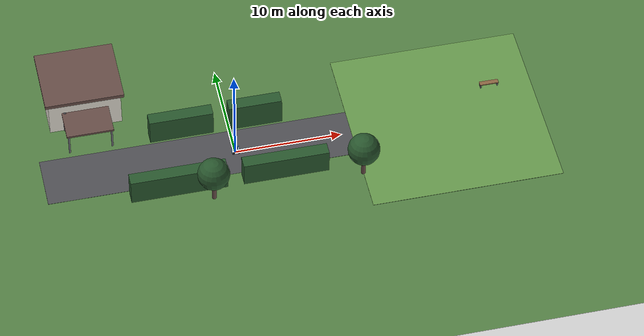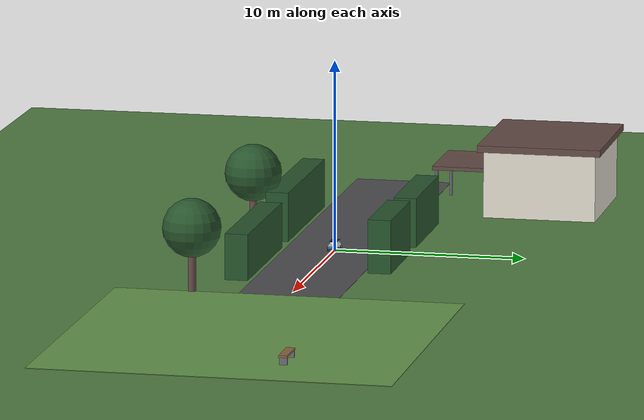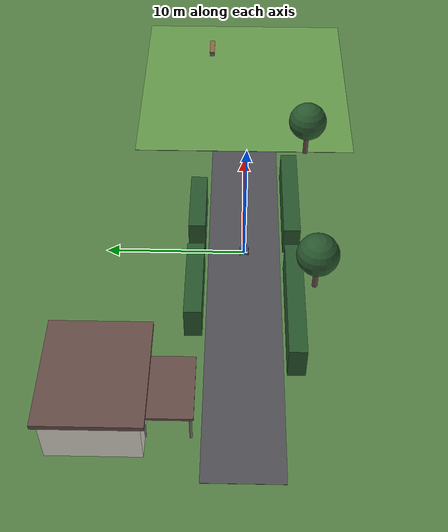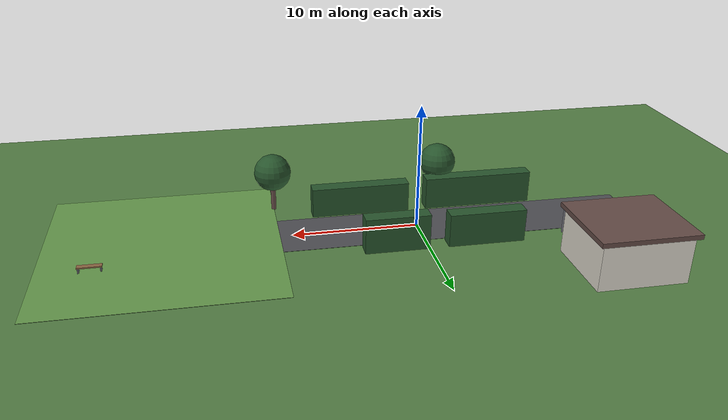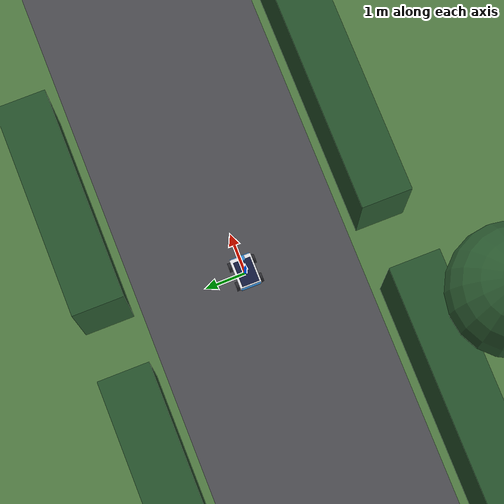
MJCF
<mujoco model="solar">
  <include file="pyunto_s1.xml"/>

  <compiler angle="radian" autolimits="true"/>
  <option timestep="0.004" integrator="implicitfast"/>

  <visual>
    <!-- Deliberately dim ambient. If the headlight fills the scene, shadow and sun look the
         same to the camera and the robot has nothing to search for. -->
    <headlight ambient="0.20 0.20 0.23" diffuse="0.25 0.25 0.25" specular="0.05 0.05 0.05"/>
    <map znear="0.02" zfar="120"/>
    <quality shadowsize="8192"/>
    <!-- Big enough for an offscreen render: the default 640x480 framebuffer refuses any
         larger image, which blocks documentation shots and any test that wants to look. -->
    <global offwidth="1600" offheight="1200"/>
  </visual>

  <asset>
    <texture name="sky" type="skybox" builtin="gradient"
             rgb1="0.38 0.52 0.74" rgb2="0.92 0.83 0.68" width="256" height="256"/>
    <texture name="road_tex" type="2d" builtin="checker" rgb1="0.33 0.33 0.35"
             rgb2="0.29 0.29 0.31" width="256" height="256"/>
    <material name="road" texture="road_tex" texrepeat="10 10" specular="0.06"/>
    <material name="grass" rgba="0.33 0.50 0.27 1" specular="0.04"/>
    <material name="park_grass" rgba="0.40 0.60 0.30 1" specular="0.04"/>
    <material name="wall" rgba="0.90 0.88 0.83 1" specular="0.05"/>
    <material name="roof" rgba="0.40 0.30 0.28 1" specular="0.08"/>
    <material name="hedge" rgba="0.16 0.34 0.18 1" specular="0.02"/>
    <material name="post" rgba="0.42 0.42 0.45 1" specular="0.3"/>
    <material name="bench" rgba="0.55 0.40 0.26 1" specular="0.1"/>

    <!--
      The lamps, off. The charging skill swaps these for `lamp_on` when the robot delivers
      power home, which is the visible payoff of the whole errand.
    -->
    <material name="lamp_off" rgba="0.30 0.30 0.32 1" specular="0.2"/>
    <material name="lamp_on" rgba="1.0 0.93 0.62 1" emission="0.95" specular="0.5"/>
  </asset>

  <worldbody>
    <light name="sun" pos="-26 4 11" dir="0.92 -0.06 -0.39" directional="true"
           diffuse="1.05 0.98 0.86" specular="0.35 0.33 0.28" castshadow="true"/>
    <!-- A little sky bounce, so shadowed areas are dark but not black. -->
    <light name="skyfill" pos="0 0 30" dir="0 0 -1" directional="true"
           diffuse="0.17 0.18 0.21"/>

    <geom name="ground" type="plane" size="60 60 0.1" material="grass"
          friction="1.2 0.02 0.001" condim="3"/>
    <geom name="road" type="box" pos="0 0 0.01" size="18 2.6 0.01" material="road"
          friction="1.2 0.02 0.001" condim="3"/>
    <!-- The park: open ground to the east, the one place the low western sun still reaches. -->
    <geom name="park" type="box" pos="20 0 0.015" size="9 9 0.015" material="park_grass"
          friction="1.2 0.02 0.001" condim="3"/>

    <!-- ================= home, at the west end ================= -->
    <body name="house" pos="-13 9.0 0">
      <geom name="house_wall" type="box" pos="0 0 1.8" size="3.4 3.0 1.8" material="wall"/>
      <geom name="house_roof" type="box" pos="0 0 3.75" size="3.7 3.3 0.18" material="roof"/>
      <!-- Two windows facing the street. These light up when the robot delivers power. -->
      <geom name="lamp_a" type="box" pos="0 -3.02 1.9" size="0.55 0.04 0.45" material="lamp_off"/>
      <geom name="lamp_b" type="box" pos="1.8 -3.02 1.9" size="0.42 0.04 0.38" material="lamp_off"/>
      <!-- A porch light, the third thing that comes on. -->
      <geom name="lamp_c" type="sphere" pos="-1.9 -3.05 2.3" size="0.16" material="lamp_off"/>
    </body>

    <body name="carport" pos="-13 4.6 0">
      <geom name="carport_roof" type="box" pos="0 0 2.3" size="2.2 1.6 0.10" material="roof"/>
      <geom name="carport_p1" type="cylinder" pos="-2.0 1.4 1.15" size="0.09 1.15" material="post"/>
      <geom name="carport_p2" type="cylinder" pos="2.0 1.4 1.15" size="0.09 1.15" material="post"/>
      <geom name="carport_p3" type="cylinder" pos="-2.0 -1.4 1.15" size="0.09 1.15" material="post"/>
      <geom name="carport_p4" type="cylinder" pos="2.0 -1.4 1.15" size="0.09 1.15" material="post"/>
    </body>

    <body name="hedges" pos="0 0 0">
      <geom name="hedge_a" type="box" pos="-4.5 3.4 1.3" size="3.0 0.6 1.3" material="hedge"/>
      <geom name="hedge_b" type="box" pos="2.5 3.4 1.4" size="2.5 0.6 1.4" material="hedge"/>
      <geom name="hedge_c" type="box" pos="-6 -3.4 1.3" size="4.5 0.6 1.3" material="hedge"/>
      <geom name="hedge_d" type="box" pos="4 -3.4 1.2" size="4.0 0.6 1.2" material="hedge"/>
    </body>

    <!-- Street trees, on the road's south side. More shadow, and depth for the camera. -->
    <body name="tree_a" pos="-3 -5.0 0">
      <geom name="tree_a_trunk" type="cylinder" pos="0 0 1.5" size="0.20 1.5" material="roof"/>
      <geom name="tree_a_crown" type="sphere" pos="0 0 3.3" size="1.5" material="hedge"/>
    </body>
    <body name="tree_b" pos="11 -5.0 0">
      <geom name="tree_b_trunk" type="cylinder" pos="0 0 1.5" size="0.20 1.5" material="roof"/>
      <geom name="tree_b_crown" type="sphere" pos="0 0 3.3" size="1.5" material="hedge"/>
    </body>

    <!-- ================= the park, east and sunlit ================= -->
    <!-- A bench so the park reads as a park, placed east so its shadow falls away from the
         open ground the robot should choose. -->
    <body name="bench" pos="25 3.0 0">
      <geom name="bench_seat" type="box" pos="0 0 0.45" size="0.9 0.22 0.05" material="bench"/>
      <geom name="bench_l1" type="box" pos="-0.8 0 0.22" size="0.05 0.2 0.22" material="post"/>
      <geom name="bench_l2" type="box" pos="0.8 0 0.22" size="0.05 0.2 0.22" material="post"/>
    </body>
  </worldbody>

  <keyframe>
    <key name="carport" qpos="-13 4.6 0.24  1 0 0 0   0 0   0 0 0 0"/>
    <!-- "street" starts out on the road, for testing travel without the departure. -->
    <key name="street" qpos="-4 0 0.24  1 0 0 0   0 0   0 0 0 0"/>
    <!-- "park" starts in the sunlit open ground, for testing charging on its own. -->
    <key name="park" qpos="20 0 0.24  1 0 0 0   0 0   0 0 0 0"/>
  </keyframe>
</mujoco>

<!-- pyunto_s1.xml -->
<mujoco model="pyunto_s1">
  <compiler angle="radian" autolimits="true"/>

  <default>
    <default class="s1">
      <geom type="box" condim="3" friction="1.2 0.05 0.01" density="500" group="1"/>
      <joint type="hinge" damping="1.2" armature="0.01" limited="true"/>
      <default class="s1_wheel">
        <geom type="cylinder" size="0.11 0.045" condim="4"
              friction="1.6 0.06 0.02" density="700" rgba="0.16 0.16 0.18 1"/>
        <joint type="hinge" axis="0 1 0" damping="0.35" armature="0.008" limited="false"/>
      </default>
    </default>
  </default>

  <asset>
    <material name="s1_body" rgba="0.93 0.93 0.95 1" specular="0.3" shininess="0.4"/>
    <material name="s1_trim" rgba="0.20 0.55 0.85 1" specular="0.4"/>
    <!-- Dark blue-black with a strong specular: what a photovoltaic panel looks like, and
         visibly different from the body so the panel reads at a glance. -->
    <material name="s1_panel" rgba="0.08 0.11 0.26 1" specular="0.85" shininess="0.85"/>
    <material name="s1_mast" rgba="0.35 0.35 0.38 1" specular="0.3"/>
  </asset>

  <worldbody>
    <body name="base" pos="0 0 0.24" childclass="s1">
      <freejoint name="root"/>
      <inertial pos="0 0 0" mass="18" diaginertia="0.55 0.75 0.95"/>

      <geom name="chassis" type="box" size="0.36 0.26 0.09" material="s1_body"/>
      <geom name="bumper_f" type="box" pos="0.37 0 -0.02" size="0.02 0.24 0.05" material="s1_trim"/>
      <geom name="bumper_r" type="box" pos="-0.37 0 -0.02" size="0.02 0.24 0.05" material="s1_trim"/>
      <!-- Cargo box: this is a delivery-shaped robot, and it gives the panel something to
           sit above without shading the camera. -->
      <geom name="cargo" type="box" pos="-0.06 0 0.16" size="0.22 0.20 0.07" material="s1_body"/>

      <body name="panel_mount" pos="-0.06 0 0.25">
        <joint name="panel_tilt" axis="0 1 0" range="-0.9 0.9" damping="2.0"/>
        <geom name="solar_panel" type="box" pos="0 0 0.012" size="0.30 0.21 0.012"
              material="s1_panel" density="250"/>
      </body>

      <!-- Camera mast, forward of the panel so the panel never shades the lens. -->
      <body name="mast" pos="0.24 0 0.14">
        <geom name="mast_post" type="cylinder" size="0.022 0.14" pos="0 0 0.14" material="s1_mast"/>
        <body name="head" pos="0 0 0.30">
          <joint name="neck_yaw" axis="0 0 1" range="-1.8 1.8" damping="0.6"/>
          <geom name="head_shell" type="box" size="0.06 0.07 0.045" material="s1_trim"/>
          <!--
            Looking along +x with z up, matching the humanoid and the rover exactly. Every
            piece of perception in this project assumes this orientation.
          -->
          <camera name="head_cam" pos="0.055 0 0.01" xyaxes="0 -1 0  0 0 1" fovy="70"/>
        </body>
      </body>

      <body name="wheel_lf" pos="0.24 0.285 -0.13">
        <joint name="drive_lf" class="s1_wheel"/>
        <geom name="tyre_lf" class="s1_wheel" euler="1.5708 0 0"/>
      </body>
      <body name="wheel_rf" pos="0.24 -0.285 -0.13">
        <joint name="drive_rf" class="s1_wheel"/>
        <geom name="tyre_rf" class="s1_wheel" euler="1.5708 0 0"/>
      </body>
      <body name="wheel_lr" pos="-0.24 0.285 -0.13">
        <joint name="drive_lr" class="s1_wheel"/>
        <geom name="tyre_lr" class="s1_wheel" euler="1.5708 0 0"/>
      </body>
      <body name="wheel_rr" pos="-0.24 -0.285 -0.13">
        <joint name="drive_rr" class="s1_wheel"/>
        <geom name="tyre_rr" class="s1_wheel" euler="1.5708 0 0"/>
      </body>
    </body>
  </worldbody>

  <actuator>
    <velocity name="drive_lf" joint="drive_lf" kv="9" ctrlrange="-18 18"/>
    <velocity name="drive_rf" joint="drive_rf" kv="9" ctrlrange="-18 18"/>
    <velocity name="drive_lr" joint="drive_lr" kv="9" ctrlrange="-18 18"/>
    <velocity name="drive_rr" joint="drive_rr" kv="9" ctrlrange="-18 18"/>
    <position name="neck_yaw" joint="neck_yaw" kp="12" ctrlrange="-1.8 1.8"/>
    <position name="panel_tilt" joint="panel_tilt" kp="25" ctrlrange="-0.9 0.9"/>
  </actuator>

  <keyframe>
    <!--
      qpos layout: 7 free joint + panel_tilt + neck_yaw + 4 wheels = 13.
      The order follows the body tree: panel_mount, then mast/head, then the wheels.
    -->
    <key name="stand" qpos="0 0 0.24  1 0 0 0   0 0   0 0 0 0"/>
  </keyframe>
</mujoco>
